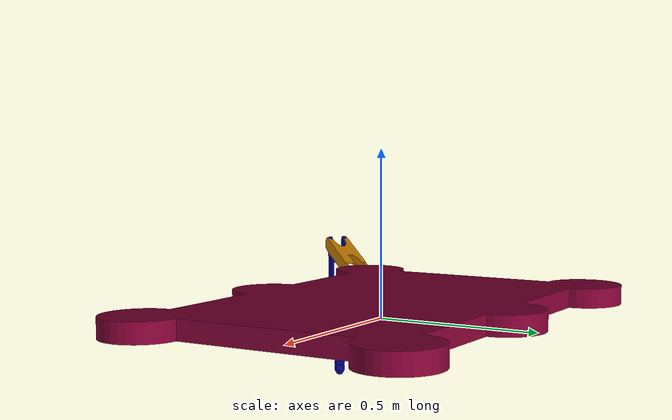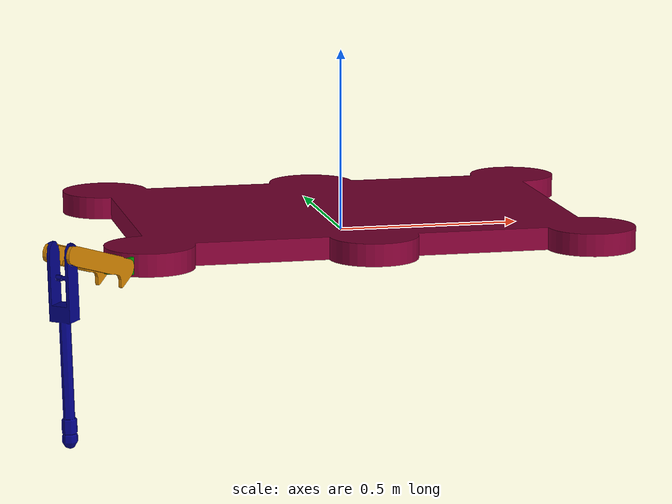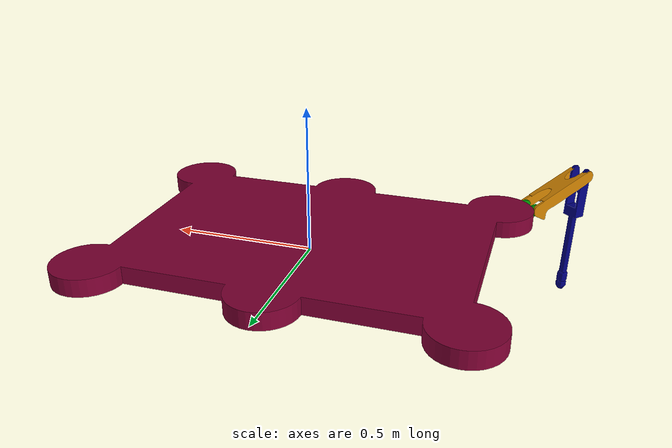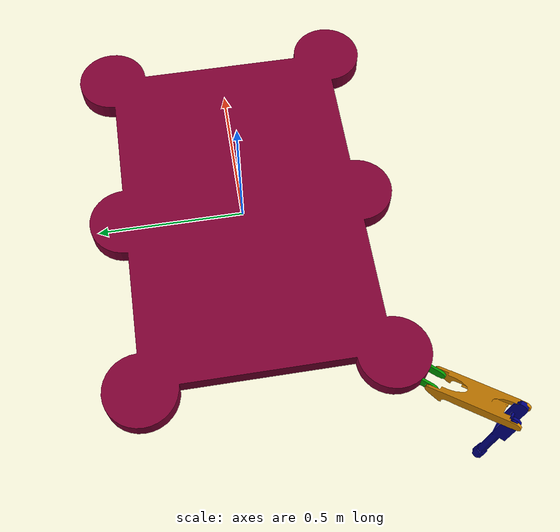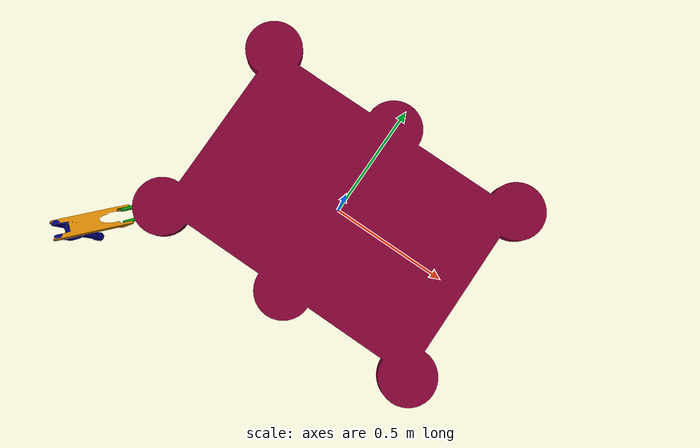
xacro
<?xml version="1.0"?>
<robot xmlns:xacro="http://www.ros.org/wiki/xacro" name="hexapod">
    <xacro:arg name="namespace" default=""/>

    <xacro:include filename="$(find hex)/models/monoped/xacro/macro.monoped.xacro"/>

    <xacro:macro name="name">
        <link name="base">
            <visual>
                <geometry>
                    <mesh filename="package://hex/models/hexapod/meshes/base/base.stl" scale="0.8 0.8 1.8"/>
                </geometry>
                <origin xyz="0.0 0 0"/>
                <material name="red">
                    <color rgba="0.5 0 0.2 1"/>
                </material>
            </visual>
            <inertial>
                <mass value="2"/>
                <inertia ixx="0.04" ixy="0.0" ixz="0.0" iyy="0.17" iyz="0.0" izz="0.25"/>
            </inertial>
            <collision>
                <geometry>
                    <mesh filename="package://hex/models/hexapod/meshes/base/base.stl" scale="0.8 0.8 1.8"/>
                <origin xyz="0.0 0.0 0"/>
                </geometry>
            </collision>
        </link>

        <xacro:leg
        namespace="leg1"
        legnumber="6"
        xyz="-0.65 -0.45 0.03"
        lower_bc = "-3.847"
        upper_bc = "-0.707"
        lower_cf = "0.3"
        upper_cf = "0.3"
        lower_ft = "-2.27"
        upper_ft = "-1.57"/>

    </xacro:macro>
    <xacro:name/>
</robot>

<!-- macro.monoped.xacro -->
<robot xmlns:xacro="http://www.ros.org/wiki/xacro" name="hexapod">

	<xacro:include filename="$(find hex)/models/monoped/xacro/macro.internal_config.xacro"/>
	<xacro:include filename="$(find hex)/models/monoped/xacro/macro.transmission.xacro"/>

	<xacro:macro name="leg" params="namespace legnumber xyz lower_bc upper_bc lower_cf upper_cf lower_ft upper_ft" >

        <link name="coxa_${legnumber}">
            <visual>
            <origin rpy="0.0 0.0 0.0" xyz="0.0 0.0 0.0"/>
            <geometry>
                    <mesh filename="package://hex/models/hexapod/meshes/leg/assembler.stl" scale="1 1 1"/>
            </geometry>
                <material name="green">
                    <color rgba="0 0.6 0 1"/>
                </material>
            </visual>
            <collision>
                <origin rpy="0.0 0.0 0.0" xyz="0.0 0.0 0.0"/>
                <geometry>
                    <mesh filename="package://hex/models/hexapod/meshes/leg/assembler.stl" scale="1 1 1"/>
                </geometry>
            </collision>
            <inertial>
                <mass value="2"/>
                <inertia ixx="0.04" ixy="0.0" ixz="0.0" iyy="0.17" iyz="0.0" izz="0.25"/>
            </inertial>
        </link>

        <link name="femur_${legnumber}">
            <visual>
            <origin rpy="0.0 0.0 0.0" xyz="0.0 0.0 0.0"/>
            <geometry>
                    <mesh filename="package://hex/models/hexapod/meshes/leg/upperleg.stl" scale="0.8 1 1"/>
            </geometry>
                <material name="orange">
                    <color rgba="0.8 0.5 0 1"/>
                </material>
            </visual>
            <collision>
                <origin rpy="0.0 0.0 0.0" xyz="0.0 0.0 0.0"/>
                <geometry>
                    <mesh filename="package://hex/models/hexapod/meshes/leg/upperleg.stl" scale="0.8 1 1"/>
                </geometry>
            </collision>
            <inertial>
                <mass value="2"/>
                <inertia ixx="0.04" ixy="0.0" ixz="0.0" iyy="0.17" iyz="0.0" izz="0.25"/>
            </inertial>
        </link>

        <link name="tibia_${legnumber}">
            <visual>
            <geometry>
                    <mesh filename="package://hex/models/hexapod/meshes/leg/lowerleg.stl" scale="1.4 1 1"/>
            </geometry>
                <material name="blue">
                    <color rgba="0 0 0.5 1"/>
                </material>
            </visual>
            <collision>
                <origin rpy="0.0 0.0 0.0" xyz="0.0 0.0 0.0"/>
                <geometry>
                    <mesh filename="package://hex/models/hexapod/meshes/leg/lowerleg.stl" scale="1.4 1 1"/>
                </geometry>
            </collision>
            <inertial>
                <mass value="2"/>
                <inertia ixx="0.04" ixy="0.0" ixz="0.0" iyy="0.17" iyz="0.0" izz="0.25"/>
            </inertial>
        </link>

        <joint name="base-coxa-joint-${legnumber}" type="revolute">
            <origin xyz="${xyz}" rpy="0 0 0"/>
            <parent link="base"/>
            <child  link="coxa_${legnumber}"/>
            <limit effort="50" lower="${lower_bc}" upper="${upper_bc}" velocity="1.0"/>
            <axis xyz="0 0 1"/>
            <dynamics damping="60.0" friction="4.0"/>
        </joint>

        <joint name="coxa-femur-joint-${legnumber}" type="revolute">
            <origin xyz="0.08 0.0 0.0" rpy="1.57 0.0 0.0"/>
            <parent link="coxa_${legnumber}"/>
            <child  link="femur_${legnumber}"/>
            <limit effort="200" lower="${lower_cf}" upper="${upper_cf}" velocity="1.0"/>
            <axis xyz="0 0 1"/>
            <dynamics damping="60.0" friction="4.0"/>
        </joint>

        <joint name="femur-tibia-joint-${legnumber}" type="revolute">
            <origin xyz="0.27 0.0 0.0" rpy="0.0 0.0 0.0"/>
            <parent link="femur_${legnumber}"/>
            <child  link="tibia_${legnumber}"/>
            <limit effort="200" lower="${lower_ft}" upper="${upper_ft}" velocity="1.0"/>
            <axis xyz="0 0 1"/>
            <dynamics damping="0.7" friction="0.1"/>
        </joint>

		<xacro:dsr_config_coeff legnumber="${legnumber}"/>
		<xacro:leg_transmissions legnumber="${legnumber}"/>

	</xacro:macro>
</robot>
